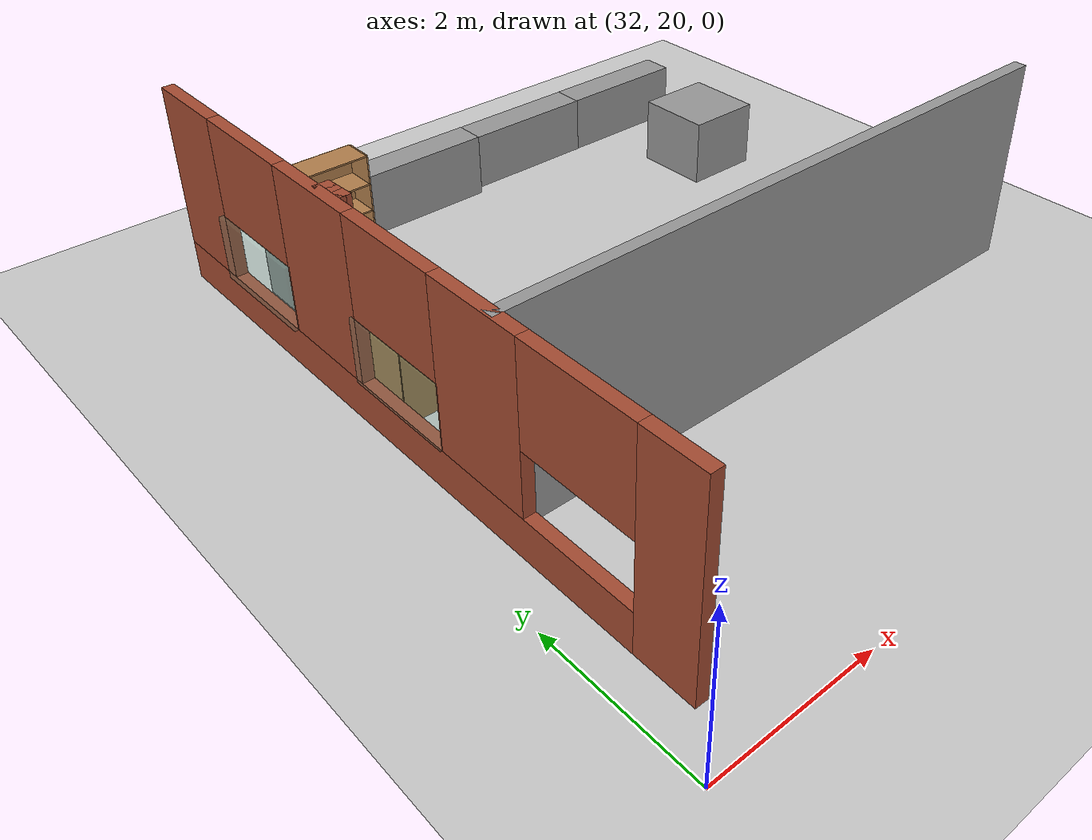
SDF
<sdf version="1.6">
 <world name="default">
  <model name="ground_plane">
   <static>1</static>
   <link name="link">
    <collision name="collision">
     <geometry><plane><normal>0 0 1</normal><size>100 100</size></plane></geometry>
     <surface><friction><ode><mu>100</mu><mu2>50</mu2></ode></friction></surface>
    </collision>
    <visual name="visual">
     <cast_shadows>0</cast_shadows>
     <geometry><plane><normal>0 0 1</normal><size>100 100</size></plane></geometry>
     <material>
      <script><uri>file://media/materials/scripts/gazebo.material</uri><name>Gazebo/Grey</name></script>
     </material>
    </visual>
   </link>
  </model>
  <model name="CVSSP">
   <pose>23.8714 24.094 0 0 -0 0</pose>
   <link name="Wall_125">
    <collision name="Wall_125_Collision">
     <geometry><box><size>7.75 0.15 2.5</size></box></geometry>
     <pose>0 0 1.25 0 -0 0</pose>
    </collision>
    <visual name="Wall_125_Visual">
     <pose>0 0 1.25 0 -0 0</pose>
     <geometry><box><size>7.75 0.15 2.5</size></box></geometry>
     <material>
      <script><uri>file://media/materials/scripts/gazebo.material</uri><name>Gazebo/Grey</name></script>
      <ambient>1 1 1 1</ambient>
     </material>
    </visual>
    <pose>12.4797 -0.937315 0 0 -0 3.14159</pose>
   </link>
   <link name="Wall_815">
    <collision name="Wall_815_Collision">
     <geometry><box><size>0.199149 0.15 2.5</size></box></geometry>
     <pose>0 0 1.25 0 -0 0</pose>
    </collision>
    <visual name="Wall_815_Visual">
     <pose>0 0 1.25 0 -0 0</pose>
     <geometry><box><size>0.199149 0.15 2.5</size></box></geometry>
     <material>
      <script><uri>file://media/materials/scripts/gazebo.material</uri><name>Gazebo/Bricks</name></script>
      <ambient>1 1 1 1</ambient>
     </material>
    </visual>
    <pose>8.74892 1.83972 0 0 -0 0</pose>
   </link>
   <link name="Wall_816">
    <collision name="Wall_816_Collision">
     <geometry><box><size>0.384892 0.15 2.5</size></box></geometry>
     <pose>0 0 1.25 0 -0 0</pose>
    </collision>
    <visual name="Wall_816_Visual">
     <pose>0 0 1.25 0 -0 0</pose>
     <geometry><box><size>0.384892 0.15 2.5</size></box></geometry>
     <material>
      <script><uri>file://media/materials/scripts/gazebo.material</uri><name>Gazebo/Bricks</name></script>
      <ambient>1 1 1 1</ambient>
     </material>
    </visual>
    <pose>8.77916 1.72252 0 0 0 -1.52245</pose>
   </link>
   <link name="Wall_817">
    <collision name="Wall_817_Collision">
     <geometry><box><size>0.24482 0.15 2.5</size></box></geometry>
     <pose>0 0 1.25 0 -0 0</pose>
    </collision>
    <visual name="Wall_817_Visual">
     <pose>0 0 1.25 0 -0 0</pose>
     <geometry><box><size>0.24482 0.15 2.5</size></box></geometry>
     <material>
      <script><uri>file://media/materials/scripts/gazebo.material</uri><name>Gazebo/Bricks</name></script>
      <ambient>1 1 1 1</ambient>
     </material>
    </visual>
    <pose>8.73757 1.60343 0 0 0 -3.10161</pose>
   </link>
   <link name="Wall_94">
    <pose>8.65296 0.7494 0 0 -0 1.57076</pose>
    <visual name="Wall_94_Visual_0">
     <pose>-3.90893 0 1.25 0 -0 0</pose>
     <geometry><box><size>0.743346 0.15 2.5</size></box></geometry>
     <material>
      <script><uri>file://media/materials/scripts/gazebo.material</uri><name>Gazebo/Bricks</name></script>
      <ambient>1 1 1 1</ambient>
     </material>
    </visual>
    <collision name="Wall_94_Collision_0">
     <geometry><box><size>0.743346 0.15 2.5</size></box></geometry>
     <pose>-3.90893 0 1.25 0 -0 0</pose>
    </collision>
    <visual name="Wall_94_Visual_1">
     <pose>0.371673 0 0.25 0 -0 0</pose>
     <geometry><box><size>7.81786 0.15 0.5</size></box></geometry>
     <material>
      <script><uri>file://media/materials/scripts/gazebo.material</uri><name>Gazebo/Bricks</name></script>
      <ambient>1 1 1 1</ambient>
     </material>
    </visual>
    <collision name="Wall_94_Collision_1">
     <geometry><box><size>7.81786 0.15 0.5</size></box></geometry>
     <pose>0.371673 0 0.25 0 -0 0</pose>
    </collision>
    <visual name="Wall_94_Visual_2">
     <pose>-1.47202 0 1.5 0 -0 0</pose>
     <geometry><box><size>1.24189 0.15 2</size></box></geometry>
     <material>
      <script><uri>file://media/materials/scripts/gazebo.material</uri><name>Gazebo/Bricks</name></script>
      <ambient>1 1 1 1</ambient>
     </material>
    </visual>
    <collision name="Wall_94_Collision_2">
     <geometry><box><size>1.24189 0.15 2</size></box></geometry>
     <pose>-1.47202 0 1.5 0 -0 0</pose>
    </collision>
    <visual name="Wall_94_Visual_3">
     <pose>1.1745 0 1.5 0 -0 0</pose>
     <geometry><box><size>1.28154 0.15 2</size></box></geometry>
     <material>
      <script><uri>file://media/materials/scripts/gazebo.material</uri><name>Gazebo/Bricks</name></script>
      <ambient>1 1 1 1</ambient>
     </material>
    </visual>
    <collision name="Wall_94_Collision_3">
     <geometry><box><size>1.28154 0.15 2</size></box></geometry>
     <pose>1.1745 0 1.5 0 -0 0</pose>
    </collision>
    <visual name="Wall_94_Visual_4">
     <pose>3.7453 0 1.5 0 -0 0</pose>
     <geometry><box><size>1.0706 0.15 2</size></box></geometry>
     <material>
      <script><uri>file://media/materials/scripts/gazebo.material</uri><name>Gazebo/Bricks</name></script>
      <ambient>1 1 1 1</ambient>
     </material>
    </visual>
    <collision name="Wall_94_Collision_4">
     <geometry><box><size>1.0706 0.15 2</size></box></geometry>
     <pose>3.7453 0 1.5 0 -0 0</pose>
    </collision>
    <visual name="Wall_94_Visual_5">
     <pose>-2.81511 0 1.9 0 -0 0</pose>
     <geometry><box><size>1.44429 0.15 1.2</size></box></geometry>
     <material>
      <script><uri>file://media/materials/scripts/gazebo.material</uri><name>Gazebo/Bricks</name></script>
      <ambient>1 1 1 1</ambient>
     </material>
    </visual>
    <collision name="Wall_94_Collision_5">
     <geometry><box><size>1.44429 0.15 1.2</size></box></geometry>
     <pose>-2.81511 0 1.9 0 -0 0</pose>
    </collision>
    <visual name="Wall_94_Visual_6">
     <pose>-0.158672 0 1.9 0 -0 0</pose>
     <geometry><box><size>1.38481 0.15 1.2</size></box></geometry>
     <material>
      <script><uri>file://media/materials/scripts/gazebo.material</uri><name>Gazebo/Bricks</name></script>
      <ambient>1 1 1 1</ambient>
     </material>
    </visual>
    <collision name="Wall_94_Collision_6">
     <geometry><box><size>1.38481 0.15 1.2</size></box></geometry>
     <pose>-0.158672 0 1.9 0 -0 0</pose>
    </collision>
    <visual name="Wall_94_Visual_7">
     <pose>2.51264 0 1.9 0 -0 0</pose>
     <geometry><box><size>1.39473 0.15 1.2</size></box></geometry>
     <material>
      <script><uri>file://media/materials/scripts/gazebo.material</uri><name>Gazebo/Bricks</name></script>
      <ambient>1 1 1 1</ambient>
     </material>
    </visual>
    <collision name="Wall_94_Collision_7">
     <geometry><box><size>1.39473 0.15 1.2</size></box></geometry>
     <pose>2.51264 0 1.9 0 -0 0</pose>
    </collision>
   </link>
   <static>1</static>
  </model>
  <model name="bookshelf_oak">
   <link name="link">
    <inertial><mass>1</mass></inertial>
    <visual name="visual4">
     <pose>0 -0.195 0.03 0 -0 0</pose>
     <geometry><box><size>0.88 0.4 0.06</size></box></geometry>
     <material>
      <script><uri>file://media/materials/scripts/gazebo.material</uri><name>Gazebo/Wood</name></script>
      <shader type="pixel"/>
     </material>
    </visual>
    <visual name="visual3">
     <pose>-0.45 -0.195 0.6 0 -0 0</pose>
     <geometry><box><size>0.02 0.4 1.2</size></box></geometry>
     <material>
      <script><uri>file://media/materials/scripts/gazebo.material</uri><name>Gazebo/Wood</name></script>
      <shader type="pixel"/>
     </material>
    </visual>
    <visual name="visual5">
     <pose>0 -0.195 1.19 0 -0 0</pose>
     <geometry><box><size>0.88 0.4 0.02</size></box></geometry>
     <material>
      <script><uri>file://media/materials/scripts/gazebo.material</uri><name>Gazebo/Wood</name></script>
      <shader type="pixel"/>
     </material>
    </visual>
    <visual name="visual2">
     <pose>0.45 -0.195 0.6 0 -0 0</pose>
     <geometry><box><size>0.02 0.4 1.2</size></box></geometry>
     <material>
      <script><uri>file://media/materials/scripts/gazebo.material</uri><name>Gazebo/Wood</name></script>
      <shader type="pixel"/>
     </material>
    </visual>
    <visual name="visual1">
     <pose>0 0.005 0.6 0 -0 0</pose>
     <geometry><box><size>0.9 0.01 1.2</size></box></geometry>
     <material>
      <script><uri>file://media/materials/scripts/gazebo.material</uri><name>Gazebo/Wood</name></script>
      <shader type="pixel"/>
     </material>
    </visual>
    <visual name="visual6">
     <pose>0 -0.195 0.43 0 -0 0</pose>
     <geometry><box><size>0.88 0.4 0.02</size></box></geometry>
     <material>
      <script><uri>file://media/materials/scripts/gazebo.material</uri><name>Gazebo/Wood</name></script>
      <shader type="pixel"/>
     </material>
    </visual>
    <visual name="visual7">
     <pose>0 -0.195 0.8 0 -0 0</pose>
     <geometry><box><size>0.88 0.4 0.02</size></box></geometry>
     <material>
      <script><uri>file://media/materials/scripts/gazebo.material</uri><name>Gazebo/Wood</name></script>
      <shader type="pixel"/>
     </material>
    </visual>
    <collision name="back">
     <pose>0 0.005 0.6 0 -0 0</pose>
     <geometry><box><size>0.9 0.01 1.2</size></box></geometry>
     <surface>
      <friction>
       <ode><mu>1</mu><mu2>1</mu2><fdir1>0 0 0</fdir1><slip1>0</slip1><slip2>0</slip2></ode>
       <torsional>
        <coefficient>1</coefficient>
        <patch_radius>0</patch_radius>
        <surface_radius>0</surface_radius>
        <use_patch_radius>1</use_patch_radius>
        <ode><slip>0</slip></ode>
       </torsional>
      </friction>
      <bounce><restitution_coefficient>0</restitution_coefficient><threshold>1e+06</threshold></bounce>
      <contact>
       <collide_without_contact>0</collide_without_contact>
       <collide_without_contact_bitmask>1</collide_without_contact_bitmask>
       <collide_bitmask>1</collide_bitmask>
       <ode>
        <soft_cfm>0</soft_cfm>
        <soft_erp>0.2</soft_erp>
        <kp>1e+13</kp>
        <kd>1</kd>
        <max_vel>0.01</max_vel>
        <min_depth>0</min_depth>
       </ode>
       <bullet>
        <split_impulse>1</split_impulse>
        <split_impulse_penetration_threshold>-0.01</split_impulse_penetration_threshold>
        <soft_cfm>0</soft_cfm>
        <soft_erp>0.2</soft_erp>
        <kp>1e+13</kp>
        <kd>1</kd>
       </bullet>
      </contact>
     </surface>
    </collision>
    <collision name="left_side">
     <pose>0.45 -0.195 0.6 0 -0 0</pose>
     <geometry><box><size>0.02 0.4 1.2</size></box></geometry>
     <surface>
      <friction>
       <ode><mu>1</mu><mu2>1</mu2><fdir1>0 0 0</fdir1><slip1>0</slip1><slip2>0</slip2></ode>
       <torsional>
        <coefficient>1</coefficient>
        <patch_radius>0</patch_radius>
        <surface_radius>0</surface_radius>
        <use_patch_radius>1</use_patch_radius>
        <ode><slip>0</slip></ode>
       </torsional>
      </friction>
      <bounce><restitution_coefficient>0</restitution_coefficient><threshold>1e+06</threshold></bounce>
      <contact>
       <collide_without_contact>0</collide_without_contact>
       <collide_without_contact_bitmask>1</collide_without_contact_bitmask>
       <collide_bitmask>1</collide_bitmask>
       <ode>
        <soft_cfm>0</soft_cfm>
        <soft_erp>0.2</soft_erp>
        <kp>1e+13</kp>
        <kd>1</kd>
        <max_vel>0.01</max_vel>
        <min_depth>0</min_depth>
       </ode>
       <bullet>
        <split_impulse>1</split_impulse>
        <split_impulse_penetration_threshold>-0.01</split_impulse_penetration_threshold>
        <soft_cfm>0</soft_cfm>
        <soft_erp>0.2</soft_erp>
        <kp>1e+13</kp>
        <kd>1</kd>
       </bullet>
      </contact>
     </surface>
    </collision>
    <collision name="right_side">
     <pose>-0.45 -0.195 0.6 0 -0 0</pose>
     <geometry><box><size>0.02 0.4 1.2</size></box></geometry>
     <surface>
      <friction>
       <ode><mu>1</mu><mu2>1</mu2><fdir1>0 0 0</fdir1><slip1>0</slip1><slip2>0</slip2></ode>
       <torsional>
        <coefficient>1</coefficient>
        <patch_radius>0</patch_radius>
        <surface_radius>0</surface_radius>
        <use_patch_radius>1</use_patch_radius>
        <ode><slip>0</slip></ode>
       </torsional>
      </friction>
      <bounce><restitution_coefficient>0</restitution_coefficient><threshold>1e+06</threshold></bounce>
      <contact>
       <collide_without_contact>0</collide_without_contact>
       <collide_without_contact_bitmask>1</collide_without_contact_bitmask>
       <collide_bitmask>1</collide_bitmask>
       <ode>
        <soft_cfm>0</soft_cfm>
        <soft_erp>0.2</soft_erp>
        <kp>1e+13</kp>
        <kd>1</kd>
        <max_vel>0.01</max_vel>
        <min_depth>0</min_depth>
       </ode>
       <bullet>
        <split_impulse>1</split_impulse>
        <split_impulse_penetration_threshold>-0.01</split_impulse_penetration_threshold>
        <soft_cfm>0</soft_cfm>
        <soft_erp>0.2</soft_erp>
        <kp>1e+13</kp>
        <kd>1</kd>
       </bullet>
      </contact>
     </surface>
    </collision>
    <collision name="bottom">
     <pose>0 -0.195 0.03 0 -0 0</pose>
     <geometry><box><size>0.88 0.4 0.06</size></box></geometry>
     <surface>
      <friction>
       <ode><mu>1</mu><mu2>1</mu2><fdir1>0 0 0</fdir1><slip1>0</slip1><slip2>0</slip2></ode>
       <torsional>
        <coefficient>1</coefficient>
        <patch_radius>0</patch_radius>
        <surface_radius>0</surface_radius>
        <use_patch_radius>1</use_patch_radius>
        <ode><slip>0</slip></ode>
       </torsional>
      </friction>
      <bounce><restitution_coefficient>0</restitution_coefficient><threshold>1e+06</threshold></bounce>
      <contact>
       <collide_without_contact>0</collide_without_contact>
       <collide_without_contact_bitmask>1</collide_without_contact_bitmask>
       <collide_bitmask>1</collide_bitmask>
       <ode>
        <soft_cfm>0</soft_cfm>
        <soft_erp>0.2</soft_erp>
        <kp>1e+13</kp>
        <kd>1</kd>
        <max_vel>0.01</max_vel>
        <min_depth>0</min_depth>
       </ode>
       <bullet>
        <split_impulse>1</split_impulse>
        <split_impulse_penetration_threshold>-0.01</split_impulse_penetration_threshold>
        <soft_cfm>0</soft_cfm>
        <soft_erp>0.2</soft_erp>
        <kp>1e+13</kp>
        <kd>1</kd>
       </bullet>
      </contact>
     </surface>
    </collision>
    <collision name="top">
     <pose>0 -0.195 1.19 0 -0 0</pose>
     <geometry><box><size>0.88 0.4 0.02</size></box></geometry>
     <surface>
      <friction>
       <ode><mu>1</mu><mu2>1</mu2><fdir1>0 0 0</fdir1><slip1>0</slip1><slip2>0</slip2></ode>
       <torsional>
        <coefficient>1</coefficient>
        <patch_radius>0</patch_radius>
        <surface_radius>0</surface_radius>
        <use_patch_radius>1</use_patch_radius>
        <ode><slip>0</slip></ode>
       </torsional>
      </friction>
      <bounce><restitution_coefficient>0</restitution_coefficient><threshold>1e+06</threshold></bounce>
      <contact>
       <collide_without_contact>0</collide_without_contact>
       <collide_without_contact_bitmask>1</collide_without_contact_bitmask>
       <collide_bitmask>1</collide_bitmask>
       <ode>
        <soft_cfm>0</soft_cfm>
        <soft_erp>0.2</soft_erp>
        <kp>1e+13</kp>
        <kd>1</kd>
        <max_vel>0.01</max_vel>
        <min_depth>0</min_depth>
       </ode>
       <bullet>
        <split_impulse>1</split_impulse>
        <split_impulse_penetration_threshold>-0.01</split_impulse_penetration_threshold>
        <soft_cfm>0</soft_cfm>
        <soft_erp>0.2</soft_erp>
        <kp>1e+13</kp>
        <kd>1</kd>
       </bullet>
      </contact>
     </surface>
    </collision>
    <collision name="low_shelf">
     <pose>0 -0.195 0.43 0 -0 0</pose>
     <geometry><box><size>0.88 0.4 0.02</size></box></geometry>
     <surface>
      <friction>
       <ode><mu>1</mu><mu2>1</mu2><fdir1>0 0 0</fdir1><slip1>0</slip1><slip2>0</slip2></ode>
       <torsional>
        <coefficient>1</coefficient>
        <patch_radius>0</patch_radius>
        <surface_radius>0</surface_radius>
        <use_patch_radius>1</use_patch_radius>
        <ode><slip>0</slip></ode>
       </torsional>
      </friction>
      <bounce><restitution_coefficient>0</restitution_coefficient><threshold>1e+06</threshold></bounce>
      <contact>
       <collide_without_contact>0</collide_without_contact>
       <collide_without_contact_bitmask>1</collide_without_contact_bitmask>
       <collide_bitmask>1</collide_bitmask>
       <ode>
        <soft_cfm>0</soft_cfm>
        <soft_erp>0.2</soft_erp>
        <kp>1e+13</kp>
        <kd>1</kd>
        <max_vel>0.01</max_vel>
        <min_depth>0</min_depth>
       </ode>
       <bullet>
        <split_impulse>1</split_impulse>
        <split_impulse_penetration_threshold>-0.01</split_impulse_penetration_threshold>
        <soft_cfm>0</soft_cfm>
        <soft_erp>0.2</soft_erp>
        <kp>1e+13</kp>
        <kd>1</kd>
       </bullet>
      </contact>
     </surface>
    </collision>
    <collision name="high_shelf">
     <pose>0 -0.195 0.8 0 -0 0</pose>
     <geometry><box><size>0.88 0.4 0.02</size></box></geometry>
     <surface>
      <friction>
       <ode><mu>1</mu><mu2>1</mu2><fdir1>0 0 0</fdir1><slip1>0</slip1><slip2>0</slip2></ode>
       <torsional>
        <coefficient>1</coefficient>
        <patch_radius>0</patch_radius>
        <surface_radius>0</surface_radius>
        <use_patch_radius>1</use_patch_radius>
        <ode><slip>0</slip></ode>
       </torsional>
      </friction>
      <bounce><restitution_coefficient>0</restitution_coefficient><threshold>1e+06</threshold></bounce>
      <contact>
       <collide_without_contact>0</collide_without_contact>
       <collide_without_contact_bitmask>1</collide_without_contact_bitmask>
       <collide_bitmask>1</collide_bitmask>
       <ode>
        <soft_cfm>0</soft_cfm>
        <soft_erp>0.2</soft_erp>
        <kp>1e+13</kp>
        <kd>1</kd>
        <max_vel>0.01</max_vel>
        <min_depth>0</min_depth>
       </ode>
       <bullet>
        <split_impulse>1</split_impulse>
        <split_impulse_penetration_threshold>-0.01</split_impulse_penetration_threshold>
        <soft_cfm>0</soft_cfm>
        <soft_erp>0.2</soft_erp>
        <kp>1e+13</kp>
        <kd>1</kd>
       </bullet>
      </contact>
     </surface>
    </collision>
   </link>
   <static>1</static>
   <pose>34.0934 28.8353 0 0 -0 0</pose>
  </model>
  <model name="ply_wood_under_box">
   <link name="link">
    <inertial>
     <mass>1</mass>
     <inertia>
      <ixx>0.166667</ixx>
      <ixy>0</ixy>
      <ixz>0</ixz>
      <iyy>0.166667</iyy>
      <iyz>0</iyz>
      <izz>0.166667</izz>
     </inertia>
    </inertial>
    <gravity>0</gravity>
    <visual name="visual">
     <geometry><box><size>1 0.999999 0.999998</size></box></geometry>
     <material>
      <script><name>Gazebo/Grey</name><uri>file://media/materials/scripts/gazebo.material</uri></script>
      <shader type="pixel"><normal_map>__default__</normal_map></shader>
     </material>
    </visual>
    <collision name="collision">
     <geometry><box><size>1 0.999999 0.999998</size></box></geometry>
     <surface>
      <friction>
       <ode><mu>1</mu><mu2>1</mu2><fdir1>0 0 0</fdir1><slip1>0</slip1><slip2>0</slip2></ode>
       <torsional>
        <coefficient>1</coefficient>
        <patch_radius>0</patch_radius>
        <surface_radius>0</surface_radius>
        <use_patch_radius>1</use_patch_radius>
        <ode><slip>0</slip></ode>
       </torsional>
      </friction>
      <bounce><restitution_coefficient>0</restitution_coefficient><threshold>1e+06</threshold></bounce>
      <contact>
       <collide_without_contact>0</collide_without_contact>
       <collide_without_contact_bitmask>1</collide_without_contact_bitmask>
       <collide_bitmask>1</collide_bitmask>
       <ode>
        <soft_cfm>0</soft_cfm>
        <soft_erp>0.2</soft_erp>
        <kp>1e+13</kp>
        <kd>1</kd>
        <max_vel>0.01</max_vel>
        <min_depth>0</min_depth>
       </ode>
       <bullet>
        <split_impulse>1</split_impulse>
        <split_impulse_penetration_threshold>-0.01</split_impulse_penetration_threshold>
        <soft_cfm>0</soft_cfm>
        <soft_erp>0.2</soft_erp>
        <kp>1e+13</kp>
        <kd>1</kd>
       </bullet>
      </contact>
     </surface>
    </collision>
   </link>
   <static>1</static>
   <pose>39.2228 27.3126 0.362453 0 -0 0</pose>
  </model>
  <model name="window_0_clone_clone">
   <link name="link">
    <inertial>
     <mass>0.185318</mass>
     <inertia>
      <ixx>0.0157792</ixx>
      <ixy>0</ixy>
      <ixz>0</ixz>
      <iyy>0.0398142</iyy>
      <iyz>0</iyz>
      <izz>0.0247071</izz>
     </inertia>
    </inertial>
    <visual name="visual">
     <geometry><box><size>1.44901 0.147514 0.798588</size></box></geometry>
     <material>
      <script><name>Gazebo/Grey</name><uri>file://media/materials/scripts/gazebo.material</uri></script>
      <shader type="pixel"><normal_map>__default__</normal_map></shader>
      <ambient>0.435 0.796 0.675 1</ambient>
      <diffuse>0.7 0.7 0.7 1</diffuse>
      <specular>0.01 0.01 0.01 1</specular>
      <emissive>0 0 0 1</emissive>
     </material>
     <transparency>0.8</transparency>
    </visual>
    <collision name="collision">
     <geometry><box><size>1.44901 0.147514 0.798588</size></box></geometry>
     <surface>
      <friction>
       <ode><mu>1</mu><mu2>1</mu2><fdir1>0 0 0</fdir1><slip1>0</slip1><slip2>0</slip2></ode>
       <torsional>
        <coefficient>1</coefficient>
        <patch_radius>0</patch_radius>
        <surface_radius>0</surface_radius>
        <use_patch_radius>1</use_patch_radius>
        <ode><slip>0</slip></ode>
       </torsional>
      </friction>
      <bounce><restitution_coefficient>0</restitution_coefficient><threshold>1e+06</threshold></bounce>
      <contact>
       <collide_without_contact>0</collide_without_contact>
       <collide_without_contact_bitmask>1</collide_without_contact_bitmask>
       <collide_bitmask>1</collide_bitmask>
       <ode>
        <soft_cfm>0</soft_cfm>
        <soft_erp>0.2</soft_erp>
        <kp>1e+13</kp>
        <kd>1</kd>
        <max_vel>0.01</max_vel>
        <min_depth>0</min_depth>
       </ode>
       <bullet>
        <split_impulse>1</split_impulse>
        <split_impulse_penetration_threshold>-0.01</split_impulse_penetration_threshold>
        <soft_cfm>0</soft_cfm>
        <soft_erp>0.2</soft_erp>
        <kp>1e+13</kp>
        <kd>1</kd>
       </bullet>
      </contact>
     </surface>
    </collision>
   </link>
   <static>1</static>
   <pose>32.4979 24.7031 0.904256 0 -0 1.57547</pose>
  </model>
  <model name="window_0_clone_clone_clone">
   <link name="link">
    <inertial>
     <mass>0.185318</mass>
     <inertia>
      <ixx>0.0157792</ixx>
      <ixy>0</ixy>
      <ixz>0</ixz>
      <iyy>0.0398142</iyy>
      <iyz>0</iyz>
      <izz>0.0247071</izz>
     </inertia>
    </inertial>
    <visual name="visual">
     <geometry><box><size>1.44901 0.147514 0.798588</size></box></geometry>
     <material>
      <script><name>Gazebo/Grey</name><uri>file://media/materials/scripts/gazebo.material</uri></script>
      <shader type="pixel"><normal_map>__default__</normal_map></shader>
      <ambient>0.435 0.796 0.675 1</ambient>
      <diffuse>0.7 0.7 0.7 1</diffuse>
      <specular>0.01 0.01 0.01 1</specular>
      <emissive>0 0 0 1</emissive>
     </material>
     <transparency>0.8</transparency>
    </visual>
    <collision name="collision">
     <geometry><box><size>1.44901 0.147514 0.798588</size></box></geometry>
     <surface>
      <friction>
       <ode><mu>1</mu><mu2>1</mu2><fdir1>0 0 0</fdir1><slip1>0</slip1><slip2>0</slip2></ode>
       <torsional>
        <coefficient>1</coefficient>
        <patch_radius>0</patch_radius>
        <surface_radius>0</surface_radius>
        <use_patch_radius>1</use_patch_radius>
        <ode><slip>0</slip></ode>
       </torsional>
      </friction>
      <bounce><restitution_coefficient>0</restitution_coefficient><threshold>1e+06</threshold></bounce>
      <contact>
       <collide_without_contact>0</collide_without_contact>
       <collide_without_contact_bitmask>1</collide_without_contact_bitmask>
       <collide_bitmask>1</collide_bitmask>
       <ode>
        <soft_cfm>0</soft_cfm>
        <soft_erp>0.2</soft_erp>
        <kp>1e+13</kp>
        <kd>1</kd>
        <max_vel>0.01</max_vel>
        <min_depth>0</min_depth>
       </ode>
       <bullet>
        <split_impulse>1</split_impulse>
        <split_impulse_penetration_threshold>-0.01</split_impulse_penetration_threshold>
        <soft_cfm>0</soft_cfm>
        <soft_erp>0.2</soft_erp>
        <kp>1e+13</kp>
        <kd>1</kd>
       </bullet>
      </contact>
     </surface>
    </collision>
   </link>
   <static>1</static>
   <pose>32.4676 27.3628 0.904256 0 -0 1.57547</pose>
  </model>
  <model name="ply_wood_under_box_clone">
   <link name="link">
    <inertial>
     <mass>1</mass>
     <inertia>
      <ixx>0.166667</ixx>
      <ixy>0</ixy>
      <ixz>0</ixz>
      <iyy>0.166667</iyy>
      <iyz>0</iyz>
      <izz>0.166667</izz>
     </inertia>
    </inertial>
    <gravity>0</gravity>
    <visual name="visual">
     <geometry><box><size>1 1.50222 0.628617</size></box></geometry>
     <material>
      <script><name>Gazebo/Grey</name><uri>file://media/materials/scripts/gazebo.material</uri></script>
      <shader type="pixel"><normal_map>__default__</normal_map></shader>
     </material>
    </visual>
    <collision name="collision">
     <geometry><box><size>1 1.50222 0.628617</size></box></geometry>
     <surface>
      <friction>
       <ode><mu>1</mu><mu2>1</mu2><fdir1>0 0 0</fdir1><slip1>0</slip1><slip2>0</slip2></ode>
       <torsional>
        <coefficient>1</coefficient>
        <patch_radius>0</patch_radius>
        <surface_radius>0</surface_radius>
        <use_patch_radius>1</use_patch_radius>
        <ode><slip>0</slip></ode>
       </torsional>
      </friction>
      <bounce><restitution_coefficient>0</restitution_coefficient><threshold>1e+06</threshold></bounce>
      <contact>
       <collide_without_contact>0</collide_without_contact>
       <collide_without_contact_bitmask>1</collide_without_contact_bitmask>
       <collide_bitmask>1</collide_bitmask>
       <ode>
        <soft_cfm>0</soft_cfm>
        <soft_erp>0.2</soft_erp>
        <kp>1e+13</kp>
        <kd>1</kd>
        <max_vel>0.01</max_vel>
        <min_depth>0</min_depth>
       </ode>
       <bullet>
        <split_impulse>1</split_impulse>
        <split_impulse_penetration_threshold>-0.01</split_impulse_penetration_threshold>
        <soft_cfm>0</soft_cfm>
        <soft_erp>0.2</soft_erp>
        <kp>1e+13</kp>
        <kd>1</kd>
       </bullet>
      </contact>
     </surface>
    </collision>
   </link>
   <static>1</static>
   <pose>36.8472 23.9992 0.362453 0 0 -1.57153</pose>
  </model>
  <model name="ply_wood_under_box_clone_clone">
   <link name="link">
    <inertial>
     <mass>1</mass>
     <inertia>
      <ixx>0.166667</ixx>
      <ixy>0</ixy>
      <ixz>0</ixz>
      <iyy>0.166667</iyy>
      <iyz>0</iyz>
      <izz>0.166667</izz>
     </inertia>
    </inertial>
    <gravity>0</gravity>
    <visual name="visual">
     <geometry><box><size>1 1.50222 0.628617</size></box></geometry>
     <material>
      <script><name>Gazebo/Grey</name><uri>file://media/materials/scripts/gazebo.material</uri></script>
      <shader type="pixel"><normal_map>__default__</normal_map></shader>
     </material>
    </visual>
    <collision name="collision">
     <geometry><box><size>1 1.50222 0.628617</size></box></geometry>
     <surface>
      <friction>
       <ode><mu>1</mu><mu2>1</mu2><fdir1>0 0 0</fdir1><slip1>0</slip1><slip2>0</slip2></ode>
       <torsional>
        <coefficient>1</coefficient>
        <patch_radius>0</patch_radius>
        <surface_radius>0</surface_radius>
        <use_patch_radius>1</use_patch_radius>
        <ode><slip>0</slip></ode>
       </torsional>
      </friction>
      <bounce><restitution_coefficient>0</restitution_coefficient><threshold>1e+06</threshold></bounce>
      <contact>
       <collide_without_contact>0</collide_without_contact>
       <collide_without_contact_bitmask>1</collide_without_contact_bitmask>
       <collide_bitmask>1</collide_bitmask>
       <ode>
        <soft_cfm>0</soft_cfm>
        <soft_erp>0.2</soft_erp>
        <kp>1e+13</kp>
        <kd>1</kd>
        <max_vel>0.01</max_vel>
        <min_depth>0</min_depth>
       </ode>
       <bullet>
        <split_impulse>1</split_impulse>
        <split_impulse_penetration_threshold>-0.01</split_impulse_penetration_threshold>
        <soft_cfm>0</soft_cfm>
        <soft_erp>0.2</soft_erp>
        <kp>1e+13</kp>
        <kd>1</kd>
       </bullet>
      </contact>
     </surface>
    </collision>
   </link>
   <static>1</static>
   <pose>34.0295 24.027 0.362453 0 0 -1.57153</pose>
  </model>
  <model name="bookshelf_ply_wood">
   <link name="link">
    <inertial>
     <mass>1</mass>
     <inertia><ixx>1</ixx><ixy>0</ixy><ixz>0</ixz><iyy>1</iyy><iyz>0</iyz><izz>1</izz></inertia>
    </inertial>
    <gravity>0</gravity>
    <visual name="visual6">
     <pose>0 -0.195 0.43 0 -0 0</pose>
     <geometry><box><size>0.88 0.4 0.02</size></box></geometry>
     <material>
      <script><uri>file://media/materials/scripts/gazebo.material</uri><name>Gazebo/Wood</name></script>
      <shader type="pixel"><normal_map>__default__</normal_map></shader>
      <ambient>1 1 1 1</ambient>
      <diffuse>1 1 1 1</diffuse>
      <specular>0.2 0.2 0.2 1</specular>
      <emissive>0 0 0 1</emissive>
     </material>
    </visual>
    <visual name="visual7">
     <pose>0 -0.195 0.8 0 -0 0</pose>
     <geometry><box><size>0.88 0.4 0.02</size></box></geometry>
     <material>
      <script><uri>file://media/materials/scripts/gazebo.material</uri><name>Gazebo/Wood</name></script>
      <shader type="pixel"><normal_map>__default__</normal_map></shader>
      <ambient>1 1 1 1</ambient>
      <diffuse>1 1 1 1</diffuse>
      <specular>0.2 0.2 0.2 1</specular>
      <emissive>0 0 0 1</emissive>
     </material>
    </visual>
    <visual name="visual2">
     <pose>0.45 -0.195 0.6 0 -0 0</pose>
     <geometry><box><size>0.02 0.4 1.2</size></box></geometry>
     <material>
      <script><uri>file://media/materials/scripts/gazebo.material</uri><name>Gazebo/Wood</name></script>
      <shader type="pixel"><normal_map>__default__</normal_map></shader>
      <ambient>1 1 1 1</ambient>
      <diffuse>1 1 1 1</diffuse>
      <specular>0.2 0.2 0.2 1</specular>
      <emissive>0 0 0 1</emissive>
     </material>
    </visual>
    <visual name="visual4">
     <pose>0 -0.195 0.03 0 -0 0</pose>
     <geometry><box><size>0.88 0.4 0.06</size></box></geometry>
     <material>
      <script><uri>file://media/materials/scripts/gazebo.material</uri><name>Gazebo/Wood</name></script>
      <shader type="pixel"><normal_map>__default__</normal_map></shader>
      <ambient>1 1 1 1</ambient>
      <diffuse>1 1 1 1</diffuse>
      <specular>0.2 0.2 0.2 1</specular>
      <emissive>0 0 0 1</emissive>
     </material>
    </visual>
    <visual name="visual3">
     <pose>-0.45 -0.195 0.6 0 -0 0</pose>
     <geometry><box><size>0.02 0.4 1.2</size></box></geometry>
     <material>
      <script><uri>file://media/materials/scripts/gazebo.material</uri><name>Gazebo/Wood</name></script>
      <shader type="pixel"><normal_map>__default__</normal_map></shader>
      <ambient>1 1 1 1</ambient>
      <diffuse>1 1 1 1</diffuse>
      <specular>0.2 0.2 0.2 1</specular>
      <emissive>0 0 0 1</emissive>
     </material>
    </visual>
    <visual name="visual5">
     <pose>0 -0.195 1.19 0 -0 0</pose>
     <geometry><box><size>0.88 0.4 0.02</size></box></geometry>
     <material>
      <script><uri>file://media/materials/scripts/gazebo.material</uri><name>Gazebo/Wood</name></script>
      <shader type="pixel"><normal_map>__default__</normal_map></shader>
      <ambient>1 1 1 1</ambient>
      <diffuse>1 1 1 1</diffuse>
      <specular>0.2 0.2 0.2 1</specular>
      <emissive>0 0 0 1</emissive>
     </material>
    </visual>
    <visual name="visual1">
     <pose>0 0.005 0.6 0 -0 0</pose>
     <geometry><box><size>0.9 0.01 1.2</size></box></geometry>
     <material>
      <script><uri>file://media/materials/scripts/gazebo.material</uri><name>Gazebo/Wood</name></script>
      <shader type="pixel"><normal_map>__default__</normal_map></shader>
      <ambient>1 1 1 1</ambient>
      <diffuse>1 1 1 1</diffuse>
      <specular>0.2 0.2 0.2 1</specular>
      <emissive>0 0 0 1</emissive>
     </material>
    </visual>
    <collision name="back">
     <pose>0 0.005 0.6 0 -0 0</pose>
     <geometry><box><size>0.9 0.01 1.2</size></box></geometry>
     <surface>
      <friction>
       <ode><mu>1</mu><mu2>1</mu2><fdir1>0 0 0</fdir1><slip1>0</slip1><slip2>0</slip2></ode>
       <torsional>
        <coefficient>1</coefficient>
        <patch_radius>0</patch_radius>
        <surface_radius>0</surface_radius>
        <use_patch_radius>1</use_patch_radius>
        <ode><slip>0</slip></ode>
       </torsional>
      </friction>
      <bounce><restitution_coefficient>0</restitution_coefficient><threshold>1e+06</threshold></bounce>
      <contact>
       <collide_without_contact>0</collide_without_contact>
       <collide_without_contact_bitmask>1</collide_without_contact_bitmask>
       <collide_bitmask>1</collide_bitmask>
       <ode>
        <soft_cfm>0</soft_cfm>
        <soft_erp>0.2</soft_erp>
        <kp>1e+13</kp>
        <kd>1</kd>
        <max_vel>0.01</max_vel>
        <min_depth>0</min_depth>
       </ode>
       <bullet>
        <split_impulse>1</split_impulse>
        <split_impulse_penetration_threshold>-0.01</split_impulse_penetration_threshold>
        <soft_cfm>0</soft_cfm>
        <soft_erp>0.2</soft_erp>
        <kp>1e+13</kp>
        <kd>1</kd>
       </bullet>
      </contact>
     </surface>
    </collision>
    <collision name="left_side">
     <pose>0.45 -0.195 0.6 0 -0 0</pose>
     <geometry><box><size>0.02 0.4 1.2</size></box></geometry>
     <surface>
      <friction>
       <ode><mu>1</mu><mu2>1</mu2><fdir1>0 0 0</fdir1><slip1>0</slip1><slip2>0</slip2></ode>
       <torsional>
        <coefficient>1</coefficient>
        <patch_radius>0</patch_radius>
        <surface_radius>0</surface_radius>
        <use_patch_radius>1</use_patch_radius>
        <ode><slip>0</slip></ode>
       </torsional>
      </friction>
      <bounce><restitution_coefficient>0</restitution_coefficient><threshold>1e+06</threshold></bounce>
      <contact>
       <collide_without_contact>0</collide_without_contact>
       <collide_without_contact_bitmask>1</collide_without_contact_bitmask>
       <collide_bitmask>1</collide_bitmask>
       <ode>
        <soft_cfm>0</soft_cfm>
        <soft_erp>0.2</soft_erp>
        <kp>1e+13</kp>
        <kd>1</kd>
        <max_vel>0.01</max_vel>
        <min_depth>0</min_depth>
       </ode>
       <bullet>
        <split_impulse>1</split_impulse>
        <split_impulse_penetration_threshold>-0.01</split_impulse_penetration_threshold>
        <soft_cfm>0</soft_cfm>
        <soft_erp>0.2</soft_erp>
        <kp>1e+13</kp>
        <kd>1</kd>
       </bullet>
      </contact>
     </surface>
    </collision>
    <collision name="right_side">
     <pose>-0.45 -0.195 0.6 0 -0 0</pose>
     <geometry><box><size>0.02 0.4 1.2</size></box></geometry>
     <surface>
      <friction>
       <ode><mu>1</mu><mu2>1</mu2><fdir1>0 0 0</fdir1><slip1>0</slip1><slip2>0</slip2></ode>
       <torsional>
        <coefficient>1</coefficient>
        <patch_radius>0</patch_radius>
        <surface_radius>0</surface_radius>
        <use_patch_radius>1</use_patch_radius>
        <ode><slip>0</slip></ode>
       </torsional>
      </friction>
      <bounce><restitution_coefficient>0</restitution_coefficient><threshold>1e+06</threshold></bounce>
      <contact>
       <collide_without_contact>0</collide_without_contact>
       <collide_without_contact_bitmask>1</collide_without_contact_bitmask>
       <collide_bitmask>1</collide_bitmask>
       <ode>
        <soft_cfm>0</soft_cfm>
        <soft_erp>0.2</soft_erp>
        <kp>1e+13</kp>
        <kd>1</kd>
        <max_vel>0.01</max_vel>
        <min_depth>0</min_depth>
       </ode>
       <bullet>
        <split_impulse>1</split_impulse>
        <split_impulse_penetration_threshold>-0.01</split_impulse_penetration_threshold>
        <soft_cfm>0</soft_cfm>
        <soft_erp>0.2</soft_erp>
        <kp>1e+13</kp>
        <kd>1</kd>
       </bullet>
      </contact>
     </surface>
    </collision>
    <collision name="bottom">
     <pose>0 -0.195 0.03 0 -0 0</pose>
     <geometry><box><size>0.88 0.4 0.06</size></box></geometry>
     <surface>
      <friction>
       <ode><mu>1</mu><mu2>1</mu2><fdir1>0 0 0</fdir1><slip1>0</slip1><slip2>0</slip2></ode>
       <torsional>
        <coefficient>1</coefficient>
        <patch_radius>0</patch_radius>
        <surface_radius>0</surface_radius>
        <use_patch_radius>1</use_patch_radius>
        <ode><slip>0</slip></ode>
       </torsional>
      </friction>
      <bounce><restitution_coefficient>0</restitution_coefficient><threshold>1e+06</threshold></bounce>
      <contact>
       <collide_without_contact>0</collide_without_contact>
       <collide_without_contact_bitmask>1</collide_without_contact_bitmask>
       <collide_bitmask>1</collide_bitmask>
       <ode>
        <soft_cfm>0</soft_cfm>
        <soft_erp>0.2</soft_erp>
        <kp>1e+13</kp>
        <kd>1</kd>
        <max_vel>0.01</max_vel>
        <min_depth>0</min_depth>
       </ode>
       <bullet>
        <split_impulse>1</split_impulse>
        <split_impulse_penetration_threshold>-0.01</split_impulse_penetration_threshold>
        <soft_cfm>0</soft_cfm>
        <soft_erp>0.2</soft_erp>
        <kp>1e+13</kp>
        <kd>1</kd>
       </bullet>
      </contact>
     </surface>
    </collision>
    <collision name="top">
     <pose>0 -0.195 1.19 0 -0 0</pose>
     <geometry><box><size>0.88 0.4 0.02</size></box></geometry>
     <surface>
      <friction>
       <ode><mu>1</mu><mu2>1</mu2><fdir1>0 0 0</fdir1><slip1>0</slip1><slip2>0</slip2></ode>
       <torsional>
        <coefficient>1</coefficient>
        <patch_radius>0</patch_radius>
        <surface_radius>0</surface_radius>
        <use_patch_radius>1</use_patch_radius>
        <ode><slip>0</slip></ode>
       </torsional>
      </friction>
      <bounce><restitution_coefficient>0</restitution_coefficient><threshold>1e+06</threshold></bounce>
      <contact>
       <collide_without_contact>0</collide_without_contact>
       <collide_without_contact_bitmask>1</collide_without_contact_bitmask>
       <collide_bitmask>1</collide_bitmask>
       <ode>
        <soft_cfm>0</soft_cfm>
        <soft_erp>0.2</soft_erp>
        <kp>1e+13</kp>
        <kd>1</kd>
        <max_vel>0.01</max_vel>
        <min_depth>0</min_depth>
       </ode>
       <bullet>
        <split_impulse>1</split_impulse>
        <split_impulse_penetration_threshold>-0.01</split_impulse_penetration_threshold>
        <soft_cfm>0</soft_cfm>
        <soft_erp>0.2</soft_erp>
        <kp>1e+13</kp>
        <kd>1</kd>
       </bullet>
      </contact>
     </surface>
    </collision>
    <collision name="low_shelf">
     <pose>0 -0.195 0.43 0 -0 0</pose>
     <geometry><box><size>0.88 0.4 0.02</size></box></geometry>
     <surface>
      <friction>
       <ode><mu>1</mu><mu2>1</mu2><fdir1>0 0 0</fdir1><slip1>0</slip1><slip2>0</slip2></ode>
       <torsional>
        <coefficient>1</coefficient>
        <patch_radius>0</patch_radius>
        <surface_radius>0</surface_radius>
        <use_patch_radius>1</use_patch_radius>
        <ode><slip>0</slip></ode>
       </torsional>
      </friction>
      <bounce><restitution_coefficient>0</restitution_coefficient><threshold>1e+06</threshold></bounce>
      <contact>
       <collide_without_contact>0</collide_without_contact>
       <collide_without_contact_bitmask>1</collide_without_contact_bitmask>
       <collide_bitmask>1</collide_bitmask>
       <ode>
        <soft_cfm>0</soft_cfm>
        <soft_erp>0.2</soft_erp>
        <kp>1e+13</kp>
        <kd>1</kd>
        <max_vel>0.01</max_vel>
        <min_depth>0</min_depth>
       </ode>
       <bullet>
        <split_impulse>1</split_impulse>
        <split_impulse_penetration_threshold>-0.01</split_impulse_penetration_threshold>
        <soft_cfm>0</soft_cfm>
        <soft_erp>0.2</soft_erp>
        <kp>1e+13</kp>
        <kd>1</kd>
       </bullet>
      </contact>
     </surface>
    </collision>
    <collision name="high_shelf">
     <pose>0 -0.195 0.8 0 -0 0</pose>
     <geometry><box><size>0.88 0.4 0.02</size></box></geometry>
     <surface>
      <friction>
       <ode><mu>1</mu><mu2>1</mu2><fdir1>0 0 0</fdir1><slip1>0</slip1><slip2>0</slip2></ode>
       <torsional>
        <coefficient>1</coefficient>
        <patch_radius>0</patch_radius>
        <surface_radius>0</surface_radius>
        <use_patch_radius>1</use_patch_radius>
        <ode><slip>0</slip></ode>
       </torsional>
      </friction>
      <bounce><restitution_coefficient>0</restitution_coefficient><threshold>1e+06</threshold></bounce>
      <contact>
       <collide_without_contact>0</collide_without_contact>
       <collide_without_contact_bitmask>1</collide_without_contact_bitmask>
       <collide_bitmask>1</collide_bitmask>
       <ode>
        <soft_cfm>0</soft_cfm>
        <soft_erp>0.2</soft_erp>
        <kp>1e+13</kp>
        <kd>1</kd>
        <max_vel>0.01</max_vel>
        <min_depth>0</min_depth>
       </ode>
       <bullet>
        <split_impulse>1</split_impulse>
        <split_impulse_penetration_threshold>-0.01</split_impulse_penetration_threshold>
        <soft_cfm>0</soft_cfm>
        <soft_erp>0.2</soft_erp>
        <kp>1e+13</kp>
        <kd>1</kd>
       </bullet>
      </contact>
     </surface>
    </collision>
   </link>
   <static>1</static>
   <pose>32.7239 25.5103 0 0 -0 1.56767</pose>
  </model>
  <model name="ply_wood_under_box_clone_0">
   <link name="link">
    <inertial>
     <mass>1</mass>
     <inertia>
      <ixx>0.166667</ixx>
      <ixy>0</ixy>
      <ixz>0</ixz>
      <iyy>0.166667</iyy>
      <iyz>0</iyz>
      <izz>0.166667</izz>
     </inertia>
    </inertial>
    <gravity>0</gravity>
    <visual name="visual">
     <geometry><box><size>1 1.50222 0.628617</size></box></geometry>
     <material>
      <script><name>Gazebo/Grey</name><uri>file://media/materials/scripts/gazebo.material</uri></script>
      <shader type="pixel"><normal_map>__default__</normal_map></shader>
     </material>
    </visual>
    <collision name="collision">
     <geometry><box><size>1 1.50222 0.628617</size></box></geometry>
     <surface>
      <friction>
       <ode><mu>1</mu><mu2>1</mu2><fdir1>0 0 0</fdir1><slip1>0</slip1><slip2>0</slip2></ode>
       <torsional>
        <coefficient>1</coefficient>
        <patch_radius>0</patch_radius>
        <surface_radius>0</surface_radius>
        <use_patch_radius>1</use_patch_radius>
        <ode><slip>0</slip></ode>
       </torsional>
      </friction>
      <bounce><restitution_coefficient>0</restitution_coefficient><threshold>1e+06</threshold></bounce>
      <contact>
       <collide_without_contact>0</collide_without_contact>
       <collide_without_contact_bitmask>1</collide_without_contact_bitmask>
       <collide_bitmask>1</collide_bitmask>
       <ode>
        <soft_cfm>0</soft_cfm>
        <soft_erp>0.2</soft_erp>
        <kp>1e+13</kp>
        <kd>1</kd>
        <max_vel>0.01</max_vel>
        <min_depth>0</min_depth>
       </ode>
       <bullet>
        <split_impulse>1</split_impulse>
        <split_impulse_penetration_threshold>-0.01</split_impulse_penetration_threshold>
        <soft_cfm>0</soft_cfm>
        <soft_erp>0.2</soft_erp>
        <kp>1e+13</kp>
        <kd>1</kd>
       </bullet>
      </contact>
     </surface>
    </collision>
   </link>
   <static>1</static>
   <pose>33.3982 27.4106 0.362453 0 -0 0</pose>
  </model>
  <model name="plastic_box">
   <link name="Wall">
    <pose>0 0 0.1985 0 -0 0</pose>
    <inertial>
     <mass>5</mass>
     <inertia><ixx>0.1022</ixx><iyy>0.4107</iyy><izz>0.3815</izz><ixy>0</ixy><ixz>0</ixz><iyz>0</iyz></inertia>
    </inertial>
    <gravity>0</gravity>
    <visual name="Wall_Visual">
     <geometry><box><size>1.75 0.4 1</size></box></geometry>
     <material>
      <script><uri>file://media/materials/scripts/gazebo.material</uri><name>Gazebo/Grey</name></script>
      <ambient>1 1 1 1</ambient>
      <shader type="pixel"><normal_map>__default__</normal_map></shader>
      <diffuse>0.7 0.7 0.7 1</diffuse>
      <specular>0.01 0.01 0.01 1</specular>
      <emissive>0 0 0 1</emissive>
     </material>
    </visual>
    <collision name="Wall_Collision">
     <geometry><box><size>1.75 0.4 1</size></box></geometry>
     <surface>
      <friction>
       <ode><mu>1</mu><mu2>1</mu2><fdir1>0 0 0</fdir1><slip1>0</slip1><slip2>0</slip2></ode>
       <torsional>
        <coefficient>1</coefficient>
        <patch_radius>0</patch_radius>
        <surface_radius>0</surface_radius>
        <use_patch_radius>1</use_patch_radius>
        <ode><slip>0</slip></ode>
       </torsional>
      </friction>
      <bounce><restitution_coefficient>0</restitution_coefficient><threshold>1e+06</threshold></bounce>
      <contact>
       <collide_without_contact>0</collide_without_contact>
       <collide_without_contact_bitmask>1</collide_without_contact_bitmask>
       <collide_bitmask>1</collide_bitmask>
       <ode>
        <soft_cfm>0</soft_cfm>
        <soft_erp>0.2</soft_erp>
        <kp>1e+13</kp>
        <kd>1</kd>
        <max_vel>0.01</max_vel>
        <min_depth>0</min_depth>
       </ode>
       <bullet>
        <split_impulse>1</split_impulse>
        <split_impulse_penetration_threshold>-0.01</split_impulse_penetration_threshold>
        <soft_cfm>0</soft_cfm>
        <soft_erp>0.2</soft_erp>
        <kp>1e+13</kp>
        <kd>1</kd>
       </bullet>
      </contact>
     </surface>
    </collision>
   </link>
   <static>1</static>
   <pose>35.4417 28.7571 0.128476 0 -0 0</pose>
  </model>
  <model name="plastic_box_0_clone">
   <link name="Wall">
    <pose>0 0 0.1985 0 -0 0</pose>
    <inertial>
     <mass>5</mass>
     <inertia><ixx>0.1022</ixx><iyy>0.4107</iyy><izz>0.3815</izz><ixy>0</ixy><ixz>0</ixz><iyz>0</iyz></inertia>
    </inertial>
    <gravity>0</gravity>
    <visual name="Wall_Visual">
     <geometry><box><size>1.75 0.4 0.75</size></box></geometry>
     <material>
      <script><uri>file://media/materials/scripts/gazebo.material</uri><name>Gazebo/Grey</name></script>
      <ambient>1 1 1 1</ambient>
      <shader type="pixel"><normal_map>__default__</normal_map></shader>
      <diffuse>0.7 0.7 0.7 1</diffuse>
      <specular>0.01 0.01 0.01 1</specular>
      <emissive>0 0 0 1</emissive>
     </material>
    </visual>
    <collision name="Wall_Collision">
     <geometry><box><size>1.75 0.4 0.75</size></box></geometry>
     <surface>
      <friction>
       <ode><mu>1</mu><mu2>1</mu2><fdir1>0 0 0</fdir1><slip1>0</slip1><slip2>0</slip2></ode>
       <torsional>
        <coefficient>1</coefficient>
        <patch_radius>0</patch_radius>
        <surface_radius>0</surface_radius>
        <use_patch_radius>1</use_patch_radius>
        <ode><slip>0</slip></ode>
       </torsional>
      </friction>
      <bounce><restitution_coefficient>0</restitution_coefficient><threshold>1e+06</threshold></bounce>
      <contact>
       <collide_without_contact>0</collide_without_contact>
       <collide_without_contact_bitmask>1</collide_without_contact_bitmask>
       <collide_bitmask>1</collide_bitmask>
       <ode>
        <soft_cfm>0</soft_cfm>
        <soft_erp>0.2</soft_erp>
        <kp>1e+13</kp>
        <kd>1</kd>
        <max_vel>0.01</max_vel>
        <min_depth>0</min_depth>
       </ode>
       <bullet>
        <split_impulse>1</split_impulse>
        <split_impulse_penetration_threshold>-0.01</split_impulse_penetration_threshold>
        <soft_cfm>0</soft_cfm>
        <soft_erp>0.2</soft_erp>
        <kp>1e+13</kp>
        <kd>1</kd>
       </bullet>
      </contact>
     </surface>
    </collision>
   </link>
   <static>1</static>
   <pose>37.1813 28.7634 0.248155 0 -0 0</pose>
  </model>
  <model name="plastic_box_0_clone_0">
   <link name="Wall">
    <pose>0 0 0.1985 0 -0 0</pose>
    <inertial>
     <mass>5</mass>
     <inertia><ixx>0.1022</ixx><iyy>0.4107</iyy><izz>0.3815</izz><ixy>0</ixy><ixz>0</ixz><iyz>0</iyz></inertia>
    </inertial>
    <gravity>0</gravity>
    <visual name="Wall_Visual">
     <geometry><box><size>1.75 0.4 0.75</size></box></geometry>
     <material>
      <script><uri>file://media/materials/scripts/gazebo.material</uri><name>Gazebo/Grey</name></script>
      <ambient>1 1 1 1</ambient>
      <shader type="pixel"><normal_map>__default__</normal_map></shader>
      <diffuse>0.7 0.7 0.7 1</diffuse>
      <specular>0.01 0.01 0.01 1</specular>
      <emissive>0 0 0 1</emissive>
     </material>
    </visual>
    <collision name="Wall_Collision">
     <geometry><box><size>1.75 0.4 0.75</size></box></geometry>
     <surface>
      <friction>
       <ode><mu>1</mu><mu2>1</mu2><fdir1>0 0 0</fdir1><slip1>0</slip1><slip2>0</slip2></ode>
       <torsional>
        <coefficient>1</coefficient>
        <patch_radius>0</patch_radius>
        <surface_radius>0</surface_radius>
        <use_patch_radius>1</use_patch_radius>
        <ode><slip>0</slip></ode>
       </torsional>
      </friction>
      <bounce><restitution_coefficient>0</restitution_coefficient><threshold>1e+06</threshold></bounce>
      <contact>
       <collide_without_contact>0</collide_without_contact>
       <collide_without_contact_bitmask>1</collide_without_contact_bitmask>
       <collide_bitmask>1</collide_bitmask>
       <ode>
        <soft_cfm>0</soft_cfm>
        <soft_erp>0.2</soft_erp>
        <kp>1e+13</kp>
        <kd>1</kd>
        <max_vel>0.01</max_vel>
        <min_depth>0</min_depth>
       </ode>
       <bullet>
        <split_impulse>1</split_impulse>
        <split_impulse_penetration_threshold>-0.01</split_impulse_penetration_threshold>
        <soft_cfm>0</soft_cfm>
        <soft_erp>0.2</soft_erp>
        <kp>1e+13</kp>
        <kd>1</kd>
       </bullet>
      </contact>
     </surface>
    </collision>
   </link>
   <static>1</static>
   <pose>38.9213 28.7657 0.249906 0 -0 0</pose>
  </model>
 </world>
</sdf>
